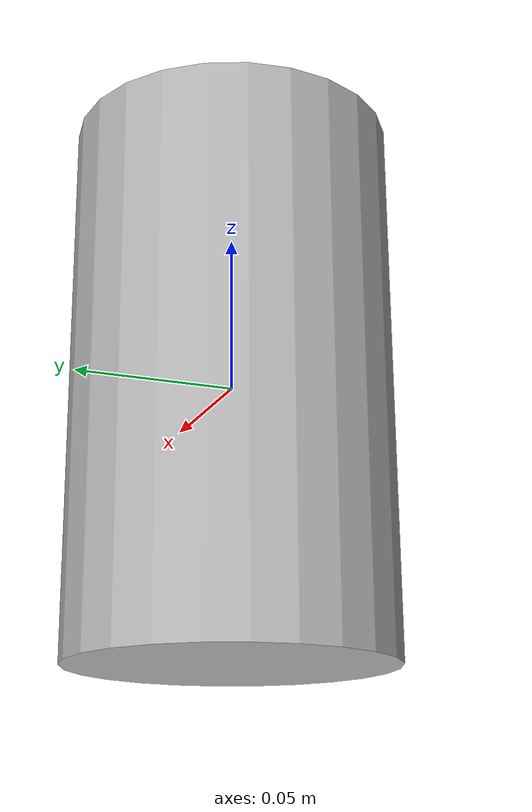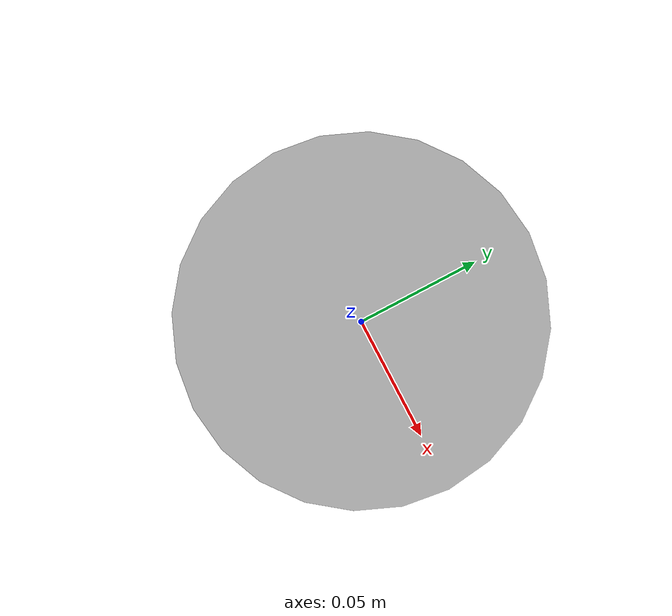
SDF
<?xml version="1.0" ?>
<sdf version='1.4'>
  <model name="coke_can_slim_big">
      <static>0</static>
      <link name='link'>
        <inertial>
          <mass>0.25</mass>
          <inertia>
            <ixx>0.000071507</ixx>
            <ixy>0.000000</ixy>
            <ixz>0.000000</ixz>
            <iyy>0.000071507</iyy>
            <iyz>0.000000</iyz>
            <izz>0.000014412</izz>
          </inertia>
        </inertial>
        <collision name='collision'>
          <geometry>
            <cylinder>
              <radius>0.032</radius>
              <length>0.18</length>
            </cylinder>
          </geometry>
          <surface>
            <bounce/>
            <friction>
              <ode/>
            </friction>
            <contact>
              <ode/>
            </contact>
          </surface>
        </collision>
        <visual name='visual'>
          <geometry>
            <cylinder>
              <radius>0.05</radius>
              <length>0.17</length>
            </cylinder>
          </geometry>
          <material>
            <script>
              <uri>model://coke_can_slim/material/scripts</uri>
              <uri>model://coke_can_slim/material/textures</uri>
              <name>Custom/coke_can_slim</name>
            </script>
          </material>
        </visual>
        <velocity_decay>
          <linear>0.000000</linear>
          <angular>0.000000</angular>
        </velocity_decay>
        <self_collide>1</self_collide>
        <kinematic>0</kinematic>
        <gravity>1</gravity>
      </link>
  </model>
</sdf>
